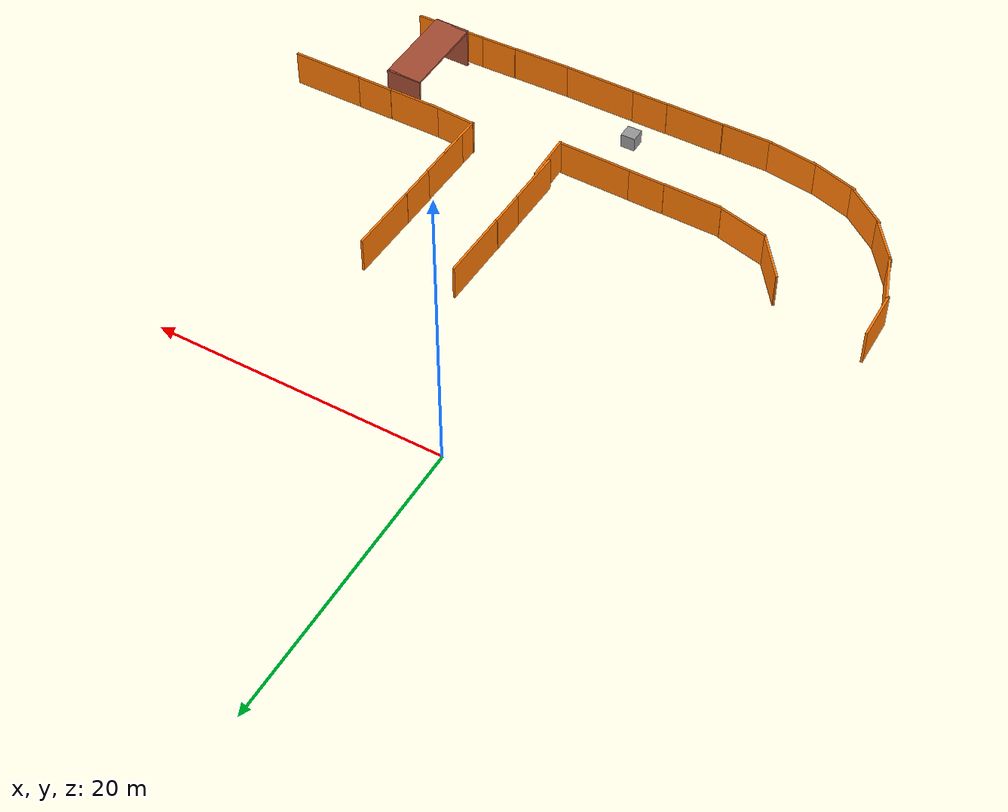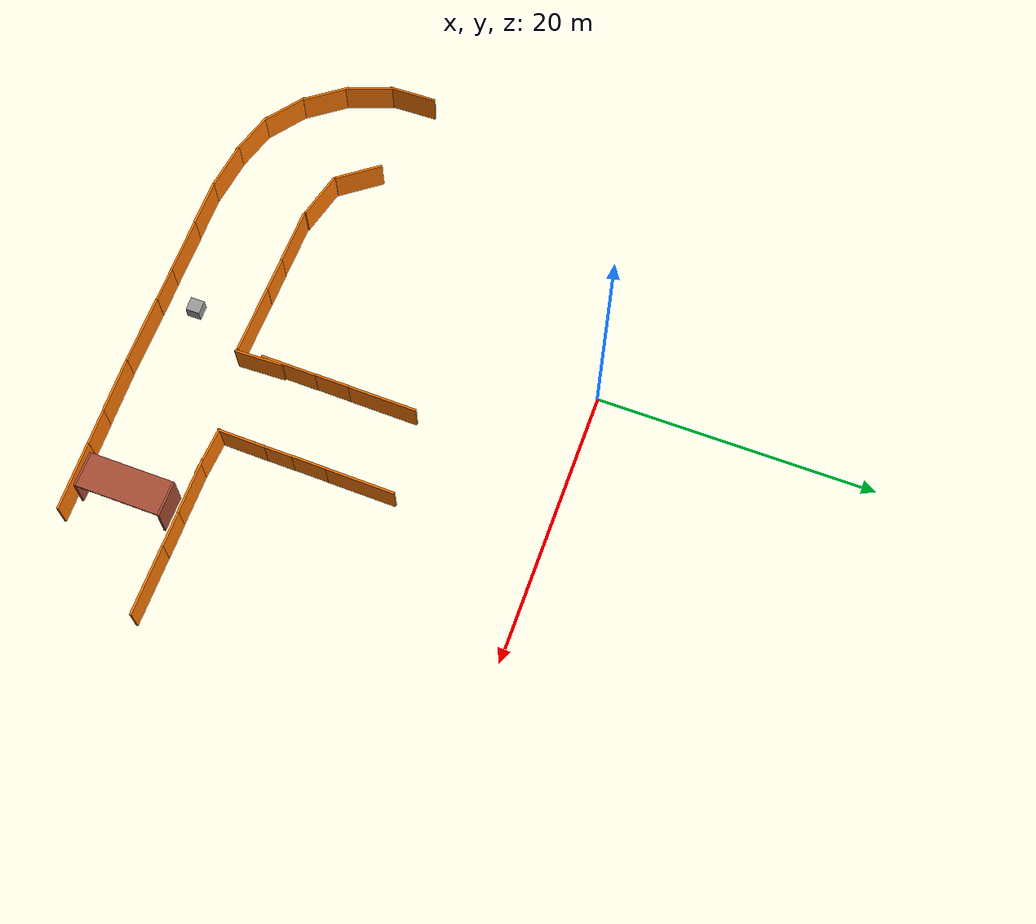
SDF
<sdf version="1.7">
 <world name="cimen_zemin_dunyasi">
  <model name="barrier2_clone_0_clone_0">
   <pose>-18.3449 -18.9963 0 0 -0 1.59331</pose>
   <link name="Wall_3">
    <collision name="Wall_3_Collision">
     <geometry><box><size>3.5 0.15 2.5</size></box></geometry>
     <pose>0 0 1.25 0 -0 0</pose>
    </collision>
    <visual name="Wall_3_Visual">
     <pose>0 0 1.25 0 -0 0</pose>
     <geometry><box><size>3.5 0.15 2.5</size></box></geometry>
     <material>
      <script><uri>file://media/materials/scripts/gazebo.material</uri><name>Gazebo/Grey</name></script>
      <ambient>0.996078 0.47451 0.0196078 1</ambient>
     </material>
     <meta><layer>0</layer></meta>
    </visual>
    <pose>-1.55327 -0.720218 0 0 -0 0</pose>
   </link>
   <static>1</static>
  </model>
  <model name="barrier2_clone_0_clone_0_clone">
   <pose>-18.1039 -22.5324 0 0 -0 1.91704</pose>
   <link name="Wall_3">
    <collision name="Wall_3_Collision">
     <geometry><box><size>3.5 0.15 2.5</size></box></geometry>
     <pose>0 0 1.25 0 -0 0</pose>
    </collision>
    <visual name="Wall_3_Visual">
     <pose>0 0 1.25 0 -0 0</pose>
     <geometry><box><size>3.5 0.15 2.5</size></box></geometry>
     <material>
      <script><uri>file://media/materials/scripts/gazebo.material</uri><name>Gazebo/Grey</name></script>
      <ambient>0.996078 0.47451 0.0196078 1</ambient>
     </material>
     <meta><layer>0</layer></meta>
    </visual>
    <pose>-1.55327 -0.720218 0 0 -0 0</pose>
   </link>
   <static>1</static>
  </model>
  <model name="barrier2_clone_0_clone_0_clone_clone">
   <pose>-16.9381 -25.7302 0 0 -0 2.21207</pose>
   <link name="Wall_3">
    <collision name="Wall_3_Collision">
     <geometry><box><size>3.5 0.15 2.5</size></box></geometry>
     <pose>0 0 1.25 0 -0 0</pose>
    </collision>
    <visual name="Wall_3_Visual">
     <pose>0 0 1.25 0 -0 0</pose>
     <geometry><box><size>3.5 0.15 2.5</size></box></geometry>
     <material>
      <script><uri>file://media/materials/scripts/gazebo.material</uri><name>Gazebo/Grey</name></script>
      <ambient>0.996078 0.47451 0.0196078 1</ambient>
     </material>
     <meta><layer>0</layer></meta>
    </visual>
    <pose>-1.55327 -0.720218 0 0 -0 0</pose>
   </link>
   <static>1</static>
  </model>
  <model name="barrier2_clone_0_clone_0_clone_clone_clone">
   <pose>-14.8373 -28.5438 0 0 -0 2.49875</pose>
   <link name="Wall_3">
    <collision name="Wall_3_Collision">
     <geometry><box><size>3.5 0.15 2.5</size></box></geometry>
     <pose>0 0 1.25 0 -0 0</pose>
    </collision>
    <visual name="Wall_3_Visual">
     <pose>0 0 1.25 0 -0 0</pose>
     <geometry><box><size>3.5 0.15 2.5</size></box></geometry>
     <material>
      <script><uri>file://media/materials/scripts/gazebo.material</uri><name>Gazebo/Grey</name></script>
      <ambient>0.996078 0.47451 0.0196078 1</ambient>
     </material>
     <meta><layer>0</layer></meta>
    </visual>
    <pose>-1.55327 -0.720218 0 0 -0 0</pose>
   </link>
   <static>1</static>
  </model>
  <model name="barrier2_clone_0_clone_0_clone_clone_clone_clone">
   <pose>-12.0783 -30.5778 0 0 -0 2.85028</pose>
   <link name="Wall_3">
    <collision name="Wall_3_Collision">
     <geometry><box><size>3.5 0.15 2.5</size></box></geometry>
     <pose>0 0 1.25 0 -0 0</pose>
    </collision>
    <visual name="Wall_3_Visual">
     <pose>0 0 1.25 0 -0 0</pose>
     <geometry><box><size>3.5 0.15 2.5</size></box></geometry>
     <material>
      <script><uri>file://media/materials/scripts/gazebo.material</uri><name>Gazebo/Grey</name></script>
      <ambient>0.996078 0.47451 0.0196078 1</ambient>
     </material>
     <meta><layer>0</layer></meta>
    </visual>
    <pose>-1.55327 -0.720218 0 0 -0 0</pose>
   </link>
   <static>1</static>
  </model>
  <model name="barrier2_clone_0_clone_0_clone_clone_clone_clone_clone">
   <pose>-8.84746 -31.4937 0 0 -0 3.00412</pose>
   <link name="Wall_3">
    <collision name="Wall_3_Collision">
     <geometry><box><size>3.5 0.15 2.5</size></box></geometry>
     <pose>0 0 1.25 0 -0 0</pose>
    </collision>
    <visual name="Wall_3_Visual">
     <pose>0 0 1.25 0 -0 0</pose>
     <geometry><box><size>3.5 0.15 2.5</size></box></geometry>
     <material>
      <script><uri>file://media/materials/scripts/gazebo.material</uri><name>Gazebo/Grey</name></script>
      <ambient>0.996078 0.47451 0.0196078 1</ambient>
     </material>
     <meta><layer>0</layer></meta>
    </visual>
    <pose>-1.55327 -0.720218 0 0 -0 0</pose>
   </link>
   <static>1</static>
  </model>
  <model name="barrier2_clone_0_clone_0_clone_clone_clone_clone_clone_clone">
   <pose>-5.48279 -31.9529 0 0 0 -3.14125</pose>
   <link name="Wall_3">
    <collision name="Wall_3_Collision">
     <geometry><box><size>3.5 0.15 2.5</size></box></geometry>
     <pose>0 0 1.25 0 -0 0</pose>
    </collision>
    <visual name="Wall_3_Visual">
     <pose>0 0 1.25 0 -0 0</pose>
     <geometry><box><size>3.5 0.15 2.5</size></box></geometry>
     <material>
      <script><uri>file://media/materials/scripts/gazebo.material</uri><name>Gazebo/Grey</name></script>
      <ambient>0.996078 0.47451 0.0196078 1</ambient>
     </material>
     <meta><layer>0</layer></meta>
    </visual>
    <pose>-1.55327 -0.720218 0 0 -0 0</pose>
   </link>
   <static>1</static>
  </model>
  <model name="barier3_clone_clone_clone_clone_0_clone_clone_clone_clone">
   <link name="Wall_5">
    <pose>-1.25417 -2.31114 0 0 -0 0</pose>
    <inertial>
     <inertia><ixx>0</ixx><ixy>0</ixy><ixz>0</ixz><iyy>0</iyy><iyz>0</iyz><izz>0</izz></inertia>
     <mass>0</mass>
    </inertial>
    <visual name="Wall_5_Visual">
     <pose>0 0 1.25 0 -0 0</pose>
     <geometry><box><size>4.04839 0.15 2.5</size></box></geometry>
     <material>
      <script><uri>file://media/materials/scripts/gazebo.material</uri><name>Gazebo/Grey</name></script>
      <ambient>0.996078 0.47451 0.0196078 1</ambient>
      <shader type="pixel"/>
     </material>
     <meta><layer>0</layer></meta>
    </visual>
    <collision name="Wall_5_Collision">
     <pose>0 0 1.25 0 -0 0</pose>
     <geometry><box><size>4.04839 0.15 2.5</size></box></geometry>
     <surface>
      <friction>
       <ode><mu>1</mu><mu2>1</mu2><fdir1>0 0 0</fdir1><slip1>0</slip1><slip2>0</slip2></ode>
       <torsional>
        <coefficient>1</coefficient>
        <patch_radius>0</patch_radius>
        <surface_radius>0</surface_radius>
        <use_patch_radius>1</use_patch_radius>
        <ode><slip>0</slip></ode>
       </torsional>
      </friction>
      <bounce><restitution_coefficient>0</restitution_coefficient><threshold>1e+06</threshold></bounce>
      <contact>
       <collide_without_contact>0</collide_without_contact>
       <collide_without_contact_bitmask>1</collide_without_contact_bitmask>
       <collide_bitmask>1</collide_bitmask>
       <ode>
        <soft_cfm>0</soft_cfm>
        <soft_erp>0.2</soft_erp>
        <kp>1e+13</kp>
        <kd>1</kd>
        <max_vel>0.01</max_vel>
        <min_depth>0</min_depth>
       </ode>
       <bullet>
        <split_impulse>1</split_impulse>
        <split_impulse_penetration_threshold>-0.01</split_impulse_penetration_threshold>
        <soft_cfm>0</soft_cfm>
        <soft_erp>0.2</soft_erp>
        <kp>1e+13</kp>
        <kd>1</kd>
       </bullet>
      </contact>
     </surface>
    </collision>
   </link>
   <link name="Wall_7">
    <pose>2 -2.29057 0 0 -0 0</pose>
    <visual name="Wall_7_Visual">
     <pose>0 0 1.25 0 -0 0</pose>
     <geometry><box><size>2.5 0.15 2.5</size></box></geometry>
     <material>
      <script><uri>file://media/materials/scripts/gazebo.material</uri><name>Gazebo/Grey</name></script>
      <ambient>0.996078 0.47451 0.0196078 1</ambient>
      <shader type="pixel"/>
     </material>
     <meta><layer>0</layer></meta>
    </visual>
    <collision name="Wall_7_Collision">
     <pose>0 0 1.25 0 -0 0</pose>
     <geometry><box><size>2.5 0.15 2.5</size></box></geometry>
     <surface>
      <friction>
       <ode><mu>1</mu><mu2>1</mu2><fdir1>0 0 0</fdir1><slip1>0</slip1><slip2>0</slip2></ode>
       <torsional>
        <coefficient>1</coefficient>
        <patch_radius>0</patch_radius>
        <surface_radius>0</surface_radius>
        <use_patch_radius>1</use_patch_radius>
        <ode><slip>0</slip></ode>
       </torsional>
      </friction>
      <bounce><restitution_coefficient>0</restitution_coefficient><threshold>1e+06</threshold></bounce>
      <contact>
       <collide_without_contact>0</collide_without_contact>
       <collide_without_contact_bitmask>1</collide_without_contact_bitmask>
       <collide_bitmask>1</collide_bitmask>
       <ode>
        <soft_cfm>0</soft_cfm>
        <soft_erp>0.2</soft_erp>
        <kp>1e+13</kp>
        <kd>1</kd>
        <max_vel>0.01</max_vel>
        <min_depth>0</min_depth>
       </ode>
       <bullet>
        <split_impulse>1</split_impulse>
        <split_impulse_penetration_threshold>-0.01</split_impulse_penetration_threshold>
        <soft_cfm>0</soft_cfm>
        <soft_erp>0.2</soft_erp>
        <kp>1e+13</kp>
        <kd>1</kd>
       </bullet>
      </contact>
     </surface>
    </collision>
   </link>
   <link name="Wall_9">
    <pose>5.71906 -2.30051 0 0 -0 0</pose>
    <inertial>
     <inertia><ixx>0</ixx><ixy>0</ixy><ixz>0</ixz><iyy>0</iyy><iyz>0</iyz><izz>0</izz></inertia>
     <mass>0</mass>
    </inertial>
    <visual name="Wall_9_Visual">
     <pose>0 0 1.25 0 -0 0</pose>
     <geometry><box><size>4.97607 0.15 2.5</size></box></geometry>
     <material>
      <script><uri>file://media/materials/scripts/gazebo.material</uri><name>Gazebo/Grey</name></script>
      <ambient>0.996078 0.47451 0.0196078 1</ambient>
      <shader type="pixel"/>
     </material>
     <meta><layer>0</layer></meta>
    </visual>
    <collision name="Wall_9_Collision">
     <pose>0 0 1.25 0 -0 0</pose>
     <geometry><box><size>4.97607 0.15 2.5</size></box></geometry>
     <surface>
      <friction>
       <ode><mu>1</mu><mu2>1</mu2><fdir1>0 0 0</fdir1><slip1>0</slip1><slip2>0</slip2></ode>
       <torsional>
        <coefficient>1</coefficient>
        <patch_radius>0</patch_radius>
        <surface_radius>0</surface_radius>
        <use_patch_radius>1</use_patch_radius>
        <ode><slip>0</slip></ode>
       </torsional>
      </friction>
      <bounce><restitution_coefficient>0</restitution_coefficient><threshold>1e+06</threshold></bounce>
      <contact>
       <collide_without_contact>0</collide_without_contact>
       <collide_without_contact_bitmask>1</collide_without_contact_bitmask>
       <collide_bitmask>1</collide_bitmask>
       <ode>
        <soft_cfm>0</soft_cfm>
        <soft_erp>0.2</soft_erp>
        <kp>1e+13</kp>
        <kd>1</kd>
        <max_vel>0.01</max_vel>
        <min_depth>0</min_depth>
       </ode>
       <bullet>
        <split_impulse>1</split_impulse>
        <split_impulse_penetration_threshold>-0.01</split_impulse_penetration_threshold>
        <soft_cfm>0</soft_cfm>
        <soft_erp>0.2</soft_erp>
        <kp>1e+13</kp>
        <kd>1</kd>
       </bullet>
      </contact>
     </surface>
    </collision>
   </link>
   <static>1</static>
   <pose>1.13149 -28.8904 0 0 -0 0</pose>
  </model>
  <model name="barier3_clone_clone_clone_clone_0_clone_clone_clone_clone_clone">
   <link name="Wall_5">
    <pose>-1.25417 -2.31114 0 0 -0 0</pose>
    <inertial>
     <inertia><ixx>0</ixx><ixy>0</ixy><ixz>0</ixz><iyy>0</iyy><iyz>0</iyz><izz>0</izz></inertia>
     <mass>0</mass>
    </inertial>
    <visual name="Wall_5_Visual">
     <pose>0 0 1.25 0 -0 0</pose>
     <geometry><box><size>4.04839 0.15 2.5</size></box></geometry>
     <material>
      <script><uri>file://media/materials/scripts/gazebo.material</uri><name>Gazebo/Grey</name></script>
      <ambient>0.996078 0.47451 0.0196078 1</ambient>
      <shader type="pixel"/>
     </material>
     <meta><layer>0</layer></meta>
    </visual>
    <collision name="Wall_5_Collision">
     <pose>0 0 1.25 0 -0 0</pose>
     <geometry><box><size>4.04839 0.15 2.5</size></box></geometry>
     <surface>
      <friction>
       <ode><mu>1</mu><mu2>1</mu2><fdir1>0 0 0</fdir1><slip1>0</slip1><slip2>0</slip2></ode>
       <torsional>
        <coefficient>1</coefficient>
        <patch_radius>0</patch_radius>
        <surface_radius>0</surface_radius>
        <use_patch_radius>1</use_patch_radius>
        <ode><slip>0</slip></ode>
       </torsional>
      </friction>
      <bounce><restitution_coefficient>0</restitution_coefficient><threshold>1e+06</threshold></bounce>
      <contact>
       <collide_without_contact>0</collide_without_contact>
       <collide_without_contact_bitmask>1</collide_without_contact_bitmask>
       <collide_bitmask>1</collide_bitmask>
       <ode>
        <soft_cfm>0</soft_cfm>
        <soft_erp>0.2</soft_erp>
        <kp>1e+13</kp>
        <kd>1</kd>
        <max_vel>0.01</max_vel>
        <min_depth>0</min_depth>
       </ode>
       <bullet>
        <split_impulse>1</split_impulse>
        <split_impulse_penetration_threshold>-0.01</split_impulse_penetration_threshold>
        <soft_cfm>0</soft_cfm>
        <soft_erp>0.2</soft_erp>
        <kp>1e+13</kp>
        <kd>1</kd>
       </bullet>
      </contact>
     </surface>
    </collision>
   </link>
   <link name="Wall_7">
    <pose>2 -2.29057 0 0 -0 0</pose>
    <visual name="Wall_7_Visual">
     <pose>0 0 1.25 0 -0 0</pose>
     <geometry><box><size>2.5 0.15 2.5</size></box></geometry>
     <material>
      <script><uri>file://media/materials/scripts/gazebo.material</uri><name>Gazebo/Grey</name></script>
      <ambient>0.996078 0.47451 0.0196078 1</ambient>
      <shader type="pixel"/>
     </material>
     <meta><layer>0</layer></meta>
    </visual>
    <collision name="Wall_7_Collision">
     <pose>0 0 1.25 0 -0 0</pose>
     <geometry><box><size>2.5 0.15 2.5</size></box></geometry>
     <surface>
      <friction>
       <ode><mu>1</mu><mu2>1</mu2><fdir1>0 0 0</fdir1><slip1>0</slip1><slip2>0</slip2></ode>
       <torsional>
        <coefficient>1</coefficient>
        <patch_radius>0</patch_radius>
        <surface_radius>0</surface_radius>
        <use_patch_radius>1</use_patch_radius>
        <ode><slip>0</slip></ode>
       </torsional>
      </friction>
      <bounce><restitution_coefficient>0</restitution_coefficient><threshold>1e+06</threshold></bounce>
      <contact>
       <collide_without_contact>0</collide_without_contact>
       <collide_without_contact_bitmask>1</collide_without_contact_bitmask>
       <collide_bitmask>1</collide_bitmask>
       <ode>
        <soft_cfm>0</soft_cfm>
        <soft_erp>0.2</soft_erp>
        <kp>1e+13</kp>
        <kd>1</kd>
        <max_vel>0.01</max_vel>
        <min_depth>0</min_depth>
       </ode>
       <bullet>
        <split_impulse>1</split_impulse>
        <split_impulse_penetration_threshold>-0.01</split_impulse_penetration_threshold>
        <soft_cfm>0</soft_cfm>
        <soft_erp>0.2</soft_erp>
        <kp>1e+13</kp>
        <kd>1</kd>
       </bullet>
      </contact>
     </surface>
    </collision>
   </link>
   <link name="Wall_9">
    <pose>5.71906 -2.30051 0 0 -0 0</pose>
    <inertial>
     <inertia><ixx>0</ixx><ixy>0</ixy><ixz>0</ixz><iyy>0</iyy><iyz>0</iyz><izz>0</izz></inertia>
     <mass>0</mass>
    </inertial>
    <visual name="Wall_9_Visual">
     <pose>0 0 1.25 0 -0 0</pose>
     <geometry><box><size>4.97607 0.15 2.5</size></box></geometry>
     <material>
      <script><uri>file://media/materials/scripts/gazebo.material</uri><name>Gazebo/Grey</name></script>
      <ambient>0.996078 0.47451 0.0196078 1</ambient>
      <shader type="pixel"/>
     </material>
     <meta><layer>0</layer></meta>
    </visual>
    <collision name="Wall_9_Collision">
     <pose>0 0 1.25 0 -0 0</pose>
     <geometry><box><size>4.97607 0.15 2.5</size></box></geometry>
     <surface>
      <friction>
       <ode><mu>1</mu><mu2>1</mu2><fdir1>0 0 0</fdir1><slip1>0</slip1><slip2>0</slip2></ode>
       <torsional>
        <coefficient>1</coefficient>
        <patch_radius>0</patch_radius>
        <surface_radius>0</surface_radius>
        <use_patch_radius>1</use_patch_radius>
        <ode><slip>0</slip></ode>
       </torsional>
      </friction>
      <bounce><restitution_coefficient>0</restitution_coefficient><threshold>1e+06</threshold></bounce>
      <contact>
       <collide_without_contact>0</collide_without_contact>
       <collide_without_contact_bitmask>1</collide_without_contact_bitmask>
       <collide_bitmask>1</collide_bitmask>
       <ode>
        <soft_cfm>0</soft_cfm>
        <soft_erp>0.2</soft_erp>
        <kp>1e+13</kp>
        <kd>1</kd>
        <max_vel>0.01</max_vel>
        <min_depth>0</min_depth>
       </ode>
       <bullet>
        <split_impulse>1</split_impulse>
        <split_impulse_penetration_threshold>-0.01</split_impulse_penetration_threshold>
        <soft_cfm>0</soft_cfm>
        <soft_erp>0.2</soft_erp>
        <kp>1e+13</kp>
        <kd>1</kd>
       </bullet>
      </contact>
     </surface>
    </collision>
   </link>
   <static>1</static>
   <pose>12.539 -28.8007 0 0 -0 0.025087</pose>
  </model>
  <model name="barier3_clone_clone_clone_clone_0_clone_clone_clone_clone_0">
   <link name="Wall_5">
    <pose>-1.25417 -2.31114 0 0 -0 0</pose>
    <inertial>
     <inertia><ixx>0</ixx><ixy>0</ixy><ixz>0</ixz><iyy>0</iyy><iyz>0</iyz><izz>0</izz></inertia>
     <mass>0</mass>
    </inertial>
    <visual name="Wall_5_Visual">
     <pose>0 0 1.25 0 -0 0</pose>
     <geometry><box><size>4.04839 0.15 2.5</size></box></geometry>
     <material>
      <script><uri>file://media/materials/scripts/gazebo.material</uri><name>Gazebo/Grey</name></script>
      <ambient>0.996078 0.47451 0.0196078 1</ambient>
      <shader type="pixel"/>
     </material>
     <meta><layer>0</layer></meta>
    </visual>
    <collision name="Wall_5_Collision">
     <pose>0 0 1.25 0 -0 0</pose>
     <geometry><box><size>4.04839 0.15 2.5</size></box></geometry>
     <surface>
      <friction>
       <ode><mu>1</mu><mu2>1</mu2><fdir1>0 0 0</fdir1><slip1>0</slip1><slip2>0</slip2></ode>
       <torsional>
        <coefficient>1</coefficient>
        <patch_radius>0</patch_radius>
        <surface_radius>0</surface_radius>
        <use_patch_radius>1</use_patch_radius>
        <ode><slip>0</slip></ode>
       </torsional>
      </friction>
      <bounce><restitution_coefficient>0</restitution_coefficient><threshold>1e+06</threshold></bounce>
      <contact>
       <collide_without_contact>0</collide_without_contact>
       <collide_without_contact_bitmask>1</collide_without_contact_bitmask>
       <collide_bitmask>1</collide_bitmask>
       <ode>
        <soft_cfm>0</soft_cfm>
        <soft_erp>0.2</soft_erp>
        <kp>1e+13</kp>
        <kd>1</kd>
        <max_vel>0.01</max_vel>
        <min_depth>0</min_depth>
       </ode>
       <bullet>
        <split_impulse>1</split_impulse>
        <split_impulse_penetration_threshold>-0.01</split_impulse_penetration_threshold>
        <soft_cfm>0</soft_cfm>
        <soft_erp>0.2</soft_erp>
        <kp>1e+13</kp>
        <kd>1</kd>
       </bullet>
      </contact>
     </surface>
    </collision>
   </link>
   <link name="Wall_7">
    <pose>2 -2.29057 0 0 -0 0</pose>
    <visual name="Wall_7_Visual">
     <pose>0 0 1.25 0 -0 0</pose>
     <geometry><box><size>2.5 0.15 2.5</size></box></geometry>
     <material>
      <script><uri>file://media/materials/scripts/gazebo.material</uri><name>Gazebo/Grey</name></script>
      <ambient>0.996078 0.47451 0.0196078 1</ambient>
      <shader type="pixel"/>
     </material>
     <meta><layer>0</layer></meta>
    </visual>
    <collision name="Wall_7_Collision">
     <pose>0 0 1.25 0 -0 0</pose>
     <geometry><box><size>2.5 0.15 2.5</size></box></geometry>
     <surface>
      <friction>
       <ode><mu>1</mu><mu2>1</mu2><fdir1>0 0 0</fdir1><slip1>0</slip1><slip2>0</slip2></ode>
       <torsional>
        <coefficient>1</coefficient>
        <patch_radius>0</patch_radius>
        <surface_radius>0</surface_radius>
        <use_patch_radius>1</use_patch_radius>
        <ode><slip>0</slip></ode>
       </torsional>
      </friction>
      <bounce><restitution_coefficient>0</restitution_coefficient><threshold>1e+06</threshold></bounce>
      <contact>
       <collide_without_contact>0</collide_without_contact>
       <collide_without_contact_bitmask>1</collide_without_contact_bitmask>
       <collide_bitmask>1</collide_bitmask>
       <ode>
        <soft_cfm>0</soft_cfm>
        <soft_erp>0.2</soft_erp>
        <kp>1e+13</kp>
        <kd>1</kd>
        <max_vel>0.01</max_vel>
        <min_depth>0</min_depth>
       </ode>
       <bullet>
        <split_impulse>1</split_impulse>
        <split_impulse_penetration_threshold>-0.01</split_impulse_penetration_threshold>
        <soft_cfm>0</soft_cfm>
        <soft_erp>0.2</soft_erp>
        <kp>1e+13</kp>
        <kd>1</kd>
       </bullet>
      </contact>
     </surface>
    </collision>
   </link>
   <link name="Wall_9">
    <pose>5.71906 -2.30051 0 0 -0 0</pose>
    <inertial>
     <inertia><ixx>0</ixx><ixy>0</ixy><ixz>0</ixz><iyy>0</iyy><iyz>0</iyz><izz>0</izz></inertia>
     <mass>0</mass>
    </inertial>
    <visual name="Wall_9_Visual">
     <pose>0 0 1.25 0 -0 0</pose>
     <geometry><box><size>4.97607 0.15 2.5</size></box></geometry>
     <material>
      <script><uri>file://media/materials/scripts/gazebo.material</uri><name>Gazebo/Grey</name></script>
      <ambient>0.996078 0.47451 0.0196078 1</ambient>
      <shader type="pixel"/>
     </material>
     <meta><layer>0</layer></meta>
    </visual>
    <collision name="Wall_9_Collision">
     <pose>0 0 1.25 0 -0 0</pose>
     <geometry><box><size>4.97607 0.15 2.5</size></box></geometry>
     <surface>
      <friction>
       <ode><mu>1</mu><mu2>1</mu2><fdir1>0 0 0</fdir1><slip1>0</slip1><slip2>0</slip2></ode>
       <torsional>
        <coefficient>1</coefficient>
        <patch_radius>0</patch_radius>
        <surface_radius>0</surface_radius>
        <use_patch_radius>1</use_patch_radius>
        <ode><slip>0</slip></ode>
       </torsional>
      </friction>
      <bounce><restitution_coefficient>0</restitution_coefficient><threshold>1e+06</threshold></bounce>
      <contact>
       <collide_without_contact>0</collide_without_contact>
       <collide_without_contact_bitmask>1</collide_without_contact_bitmask>
       <collide_bitmask>1</collide_bitmask>
       <ode>
        <soft_cfm>0</soft_cfm>
        <soft_erp>0.2</soft_erp>
        <kp>1e+13</kp>
        <kd>1</kd>
        <max_vel>0.01</max_vel>
        <min_depth>0</min_depth>
       </ode>
       <bullet>
        <split_impulse>1</split_impulse>
        <split_impulse_penetration_threshold>-0.01</split_impulse_penetration_threshold>
        <soft_cfm>0</soft_cfm>
        <soft_erp>0.2</soft_erp>
        <kp>1e+13</kp>
        <kd>1</kd>
       </bullet>
      </contact>
     </surface>
    </collision>
   </link>
   <static>1</static>
   <pose>9.70371 -18.4802 0 0 -0 1.5555</pose>
  </model>
  <model name="barier3_clone_clone_clone_clone_0_clone_clone_clone_clone_0_clone_1">
   <link name="Wall_5">
    <pose>-1.25417 -2.31114 0 0 -0 0</pose>
    <inertial>
     <inertia><ixx>0</ixx><ixy>0</ixy><ixz>0</ixz><iyy>0</iyy><iyz>0</iyz><izz>0</izz></inertia>
     <mass>0</mass>
    </inertial>
    <visual name="Wall_5_Visual">
     <pose>0 0 1.25 0 -0 0</pose>
     <geometry><box><size>4.04839 0.15 2.5</size></box></geometry>
     <material>
      <script><uri>file://media/materials/scripts/gazebo.material</uri><name>Gazebo/Grey</name></script>
      <ambient>0.996078 0.47451 0.0196078 1</ambient>
      <shader type="pixel"/>
     </material>
     <meta><layer>0</layer></meta>
    </visual>
    <collision name="Wall_5_Collision">
     <pose>0 0 1.25 0 -0 0</pose>
     <geometry><box><size>4.04839 0.15 2.5</size></box></geometry>
     <surface>
      <friction>
       <ode><mu>1</mu><mu2>1</mu2><fdir1>0 0 0</fdir1><slip1>0</slip1><slip2>0</slip2></ode>
       <torsional>
        <coefficient>1</coefficient>
        <patch_radius>0</patch_radius>
        <surface_radius>0</surface_radius>
        <use_patch_radius>1</use_patch_radius>
        <ode><slip>0</slip></ode>
       </torsional>
      </friction>
      <bounce><restitution_coefficient>0</restitution_coefficient><threshold>1e+06</threshold></bounce>
      <contact>
       <collide_without_contact>0</collide_without_contact>
       <collide_without_contact_bitmask>1</collide_without_contact_bitmask>
       <collide_bitmask>1</collide_bitmask>
       <ode>
        <soft_cfm>0</soft_cfm>
        <soft_erp>0.2</soft_erp>
        <kp>1e+13</kp>
        <kd>1</kd>
        <max_vel>0.01</max_vel>
        <min_depth>0</min_depth>
       </ode>
       <bullet>
        <split_impulse>1</split_impulse>
        <split_impulse_penetration_threshold>-0.01</split_impulse_penetration_threshold>
        <soft_cfm>0</soft_cfm>
        <soft_erp>0.2</soft_erp>
        <kp>1e+13</kp>
        <kd>1</kd>
       </bullet>
      </contact>
     </surface>
    </collision>
   </link>
   <link name="Wall_7">
    <pose>2 -2.29057 0 0 -0 0</pose>
    <visual name="Wall_7_Visual">
     <pose>0 0 1.25 0 -0 0</pose>
     <geometry><box><size>2.5 0.15 2.5</size></box></geometry>
     <material>
      <script><uri>file://media/materials/scripts/gazebo.material</uri><name>Gazebo/Grey</name></script>
      <ambient>0.996078 0.47451 0.0196078 1</ambient>
      <shader type="pixel"/>
     </material>
     <meta><layer>0</layer></meta>
    </visual>
    <collision name="Wall_7_Collision">
     <pose>0 0 1.25 0 -0 0</pose>
     <geometry><box><size>2.5 0.15 2.5</size></box></geometry>
     <surface>
      <friction>
       <ode><mu>1</mu><mu2>1</mu2><fdir1>0 0 0</fdir1><slip1>0</slip1><slip2>0</slip2></ode>
       <torsional>
        <coefficient>1</coefficient>
        <patch_radius>0</patch_radius>
        <surface_radius>0</surface_radius>
        <use_patch_radius>1</use_patch_radius>
        <ode><slip>0</slip></ode>
       </torsional>
      </friction>
      <bounce><restitution_coefficient>0</restitution_coefficient><threshold>1e+06</threshold></bounce>
      <contact>
       <collide_without_contact>0</collide_without_contact>
       <collide_without_contact_bitmask>1</collide_without_contact_bitmask>
       <collide_bitmask>1</collide_bitmask>
       <ode>
        <soft_cfm>0</soft_cfm>
        <soft_erp>0.2</soft_erp>
        <kp>1e+13</kp>
        <kd>1</kd>
        <max_vel>0.01</max_vel>
        <min_depth>0</min_depth>
       </ode>
       <bullet>
        <split_impulse>1</split_impulse>
        <split_impulse_penetration_threshold>-0.01</split_impulse_penetration_threshold>
        <soft_cfm>0</soft_cfm>
        <soft_erp>0.2</soft_erp>
        <kp>1e+13</kp>
        <kd>1</kd>
       </bullet>
      </contact>
     </surface>
    </collision>
   </link>
   <link name="Wall_9">
    <pose>5.71906 -2.30051 0 0 -0 0</pose>
    <inertial>
     <inertia><ixx>0</ixx><ixy>0</ixy><ixz>0</ixz><iyy>0</iyy><iyz>0</iyz><izz>0</izz></inertia>
     <mass>0</mass>
    </inertial>
    <visual name="Wall_9_Visual">
     <pose>0 0 1.25 0 -0 0</pose>
     <geometry><box><size>4.97607 0.15 2.5</size></box></geometry>
     <material>
      <script><uri>file://media/materials/scripts/gazebo.material</uri><name>Gazebo/Grey</name></script>
      <ambient>0.996078 0.47451 0.0196078 1</ambient>
      <shader type="pixel"/>
     </material>
     <meta><layer>0</layer></meta>
    </visual>
    <collision name="Wall_9_Collision">
     <pose>0 0 1.25 0 -0 0</pose>
     <geometry><box><size>4.97607 0.15 2.5</size></box></geometry>
     <surface>
      <friction>
       <ode><mu>1</mu><mu2>1</mu2><fdir1>0 0 0</fdir1><slip1>0</slip1><slip2>0</slip2></ode>
       <torsional>
        <coefficient>1</coefficient>
        <patch_radius>0</patch_radius>
        <surface_radius>0</surface_radius>
        <use_patch_radius>1</use_patch_radius>
        <ode><slip>0</slip></ode>
       </torsional>
      </friction>
      <bounce><restitution_coefficient>0</restitution_coefficient><threshold>1e+06</threshold></bounce>
      <contact>
       <collide_without_contact>0</collide_without_contact>
       <collide_without_contact_bitmask>1</collide_without_contact_bitmask>
       <collide_bitmask>1</collide_bitmask>
       <ode>
        <soft_cfm>0</soft_cfm>
        <soft_erp>0.2</soft_erp>
        <kp>1e+13</kp>
        <kd>1</kd>
        <max_vel>0.01</max_vel>
        <min_depth>0</min_depth>
       </ode>
       <bullet>
        <split_impulse>1</split_impulse>
        <split_impulse_penetration_threshold>-0.01</split_impulse_penetration_threshold>
        <soft_cfm>0</soft_cfm>
        <soft_erp>0.2</soft_erp>
        <kp>1e+13</kp>
        <kd>1</kd>
       </bullet>
      </contact>
     </surface>
    </collision>
   </link>
   <static>1</static>
   <pose>3.61319 -19.2952 0 0 -0 1.5555</pose>
  </model>
  <model name="barier3_clone_clone_clone_clone_0_clone_clone_clone_clone_2">
   <link name="Wall_5">
    <pose>-1.25417 -2.31114 0 0 -0 0</pose>
    <inertial>
     <inertia><ixx>0</ixx><ixy>0</ixy><ixz>0</ixz><iyy>0</iyy><iyz>0</iyz><izz>0</izz></inertia>
     <mass>0</mass>
    </inertial>
    <visual name="Wall_5_Visual">
     <pose>0 0 1.25 0 -0 0</pose>
     <geometry><box><size>4.04839 0.15 2.5</size></box></geometry>
     <material>
      <script><uri>file://media/materials/scripts/gazebo.material</uri><name>Gazebo/Grey</name></script>
      <ambient>0.996078 0.47451 0.0196078 1</ambient>
      <shader type="pixel"/>
     </material>
     <meta><layer>0</layer></meta>
    </visual>
    <collision name="Wall_5_Collision">
     <pose>0 0 1.25 0 -0 0</pose>
     <geometry><box><size>4.04839 0.15 2.5</size></box></geometry>
     <surface>
      <friction>
       <ode><mu>1</mu><mu2>1</mu2><fdir1>0 0 0</fdir1><slip1>0</slip1><slip2>0</slip2></ode>
       <torsional>
        <coefficient>1</coefficient>
        <patch_radius>0</patch_radius>
        <surface_radius>0</surface_radius>
        <use_patch_radius>1</use_patch_radius>
        <ode><slip>0</slip></ode>
       </torsional>
      </friction>
      <bounce><restitution_coefficient>0</restitution_coefficient><threshold>1e+06</threshold></bounce>
      <contact>
       <collide_without_contact>0</collide_without_contact>
       <collide_without_contact_bitmask>1</collide_without_contact_bitmask>
       <collide_bitmask>1</collide_bitmask>
       <ode>
        <soft_cfm>0</soft_cfm>
        <soft_erp>0.2</soft_erp>
        <kp>1e+13</kp>
        <kd>1</kd>
        <max_vel>0.01</max_vel>
        <min_depth>0</min_depth>
       </ode>
       <bullet>
        <split_impulse>1</split_impulse>
        <split_impulse_penetration_threshold>-0.01</split_impulse_penetration_threshold>
        <soft_cfm>0</soft_cfm>
        <soft_erp>0.2</soft_erp>
        <kp>1e+13</kp>
        <kd>1</kd>
       </bullet>
      </contact>
     </surface>
    </collision>
   </link>
   <link name="Wall_7">
    <pose>2 -2.29057 0 0 -0 0</pose>
    <visual name="Wall_7_Visual">
     <pose>0 0 1.25 0 -0 0</pose>
     <geometry><box><size>2.5 0.15 2.5</size></box></geometry>
     <material>
      <script><uri>file://media/materials/scripts/gazebo.material</uri><name>Gazebo/Grey</name></script>
      <ambient>0.996078 0.47451 0.0196078 1</ambient>
      <shader type="pixel"/>
     </material>
     <meta><layer>0</layer></meta>
    </visual>
    <collision name="Wall_7_Collision">
     <pose>0 0 1.25 0 -0 0</pose>
     <geometry><box><size>2.5 0.15 2.5</size></box></geometry>
     <surface>
      <friction>
       <ode><mu>1</mu><mu2>1</mu2><fdir1>0 0 0</fdir1><slip1>0</slip1><slip2>0</slip2></ode>
       <torsional>
        <coefficient>1</coefficient>
        <patch_radius>0</patch_radius>
        <surface_radius>0</surface_radius>
        <use_patch_radius>1</use_patch_radius>
        <ode><slip>0</slip></ode>
       </torsional>
      </friction>
      <bounce><restitution_coefficient>0</restitution_coefficient><threshold>1e+06</threshold></bounce>
      <contact>
       <collide_without_contact>0</collide_without_contact>
       <collide_without_contact_bitmask>1</collide_without_contact_bitmask>
       <collide_bitmask>1</collide_bitmask>
       <ode>
        <soft_cfm>0</soft_cfm>
        <soft_erp>0.2</soft_erp>
        <kp>1e+13</kp>
        <kd>1</kd>
        <max_vel>0.01</max_vel>
        <min_depth>0</min_depth>
       </ode>
       <bullet>
        <split_impulse>1</split_impulse>
        <split_impulse_penetration_threshold>-0.01</split_impulse_penetration_threshold>
        <soft_cfm>0</soft_cfm>
        <soft_erp>0.2</soft_erp>
        <kp>1e+13</kp>
        <kd>1</kd>
       </bullet>
      </contact>
     </surface>
    </collision>
   </link>
   <link name="Wall_9">
    <pose>5.71906 -2.30051 0 0 -0 0</pose>
    <inertial>
     <inertia><ixx>0</ixx><ixy>0</ixy><ixz>0</ixz><iyy>0</iyy><iyz>0</iyz><izz>0</izz></inertia>
     <mass>0</mass>
    </inertial>
    <visual name="Wall_9_Visual">
     <pose>0 0 1.25 0 -0 0</pose>
     <geometry><box><size>4.97607 0.15 2.5</size></box></geometry>
     <material>
      <script><uri>file://media/materials/scripts/gazebo.material</uri><name>Gazebo/Grey</name></script>
      <ambient>0.996078 0.47451 0.0196078 1</ambient>
      <shader type="pixel"/>
     </material>
     <meta><layer>0</layer></meta>
    </visual>
    <collision name="Wall_9_Collision">
     <pose>0 0 1.25 0 -0 0</pose>
     <geometry><box><size>4.97607 0.15 2.5</size></box></geometry>
     <surface>
      <friction>
       <ode><mu>1</mu><mu2>1</mu2><fdir1>0 0 0</fdir1><slip1>0</slip1><slip2>0</slip2></ode>
       <torsional>
        <coefficient>1</coefficient>
        <patch_radius>0</patch_radius>
        <surface_radius>0</surface_radius>
        <use_patch_radius>1</use_patch_radius>
        <ode><slip>0</slip></ode>
       </torsional>
      </friction>
      <bounce><restitution_coefficient>0</restitution_coefficient><threshold>1e+06</threshold></bounce>
      <contact>
       <collide_without_contact>0</collide_without_contact>
       <collide_without_contact_bitmask>1</collide_without_contact_bitmask>
       <collide_bitmask>1</collide_bitmask>
       <ode>
        <soft_cfm>0</soft_cfm>
        <soft_erp>0.2</soft_erp>
        <kp>1e+13</kp>
        <kd>1</kd>
        <max_vel>0.01</max_vel>
        <min_depth>0</min_depth>
       </ode>
       <bullet>
        <split_impulse>1</split_impulse>
        <split_impulse_penetration_threshold>-0.01</split_impulse_penetration_threshold>
        <soft_cfm>0</soft_cfm>
        <soft_erp>0.2</soft_erp>
        <kp>1e+13</kp>
        <kd>1</kd>
       </bullet>
      </contact>
     </surface>
    </collision>
   </link>
   <static>1</static>
   <pose>17.55 -20.9873 0 0 -0 0</pose>
  </model>
  <model name="barrier2_clone_clone_0_clone_0_clone_0_clone_clone_clone">
   <pose>11.9749 -23.8417 0 0 -0 3.0748</pose>
   <link name="Wall_3">
    <collision name="Wall_3_Collision">
     <geometry><box><size>3.5 0.15 2.5</size></box></geometry>
     <pose>0 0 1.25 0 -0 0</pose>
    </collision>
    <visual name="Wall_3_Visual">
     <pose>0 0 1.25 0 -0 0</pose>
     <geometry><box><size>3.5 0.15 2.5</size></box></geometry>
     <material>
      <script><uri>file://media/materials/scripts/gazebo.material</uri><name>Gazebo/Grey</name></script>
      <ambient>0.996078 0.47451 0.0196078 1</ambient>
     </material>
     <meta><layer>0</layer></meta>
    </visual>
    <pose>-1.55327 -0.720218 0 0 -0 0</pose>
   </link>
   <static>1</static>
  </model>
  <model name="barrier2_clone_clone_0_clone_0_clone_0_clone_clone_clone_clone">
   <pose>12.6672 -23.0543 0 0 0 -1.58935</pose>
   <link name="Wall_3">
    <collision name="Wall_3_Collision">
     <geometry><box><size>3.5 0.15 2.5</size></box></geometry>
     <pose>0 0 1.25 0 -0 0</pose>
    </collision>
    <visual name="Wall_3_Visual">
     <pose>0 0 1.25 0 -0 0</pose>
     <geometry><box><size>3.5 0.15 2.5</size></box></geometry>
     <material>
      <script><uri>file://media/materials/scripts/gazebo.material</uri><name>Gazebo/Grey</name></script>
      <ambient>0.996078 0.47451 0.0196078 1</ambient>
     </material>
     <meta><layer>0</layer></meta>
    </visual>
    <pose>-1.55327 -0.720218 0 0 -0 0</pose>
   </link>
   <static>1</static>
  </model>
  <model name="barrier2_clone_0_clone_0_clone_0_clone">
   <pose>-11.556 -20.9702 0 0 -0 2.21497</pose>
   <link name="Wall_3">
    <collision name="Wall_3_Collision">
     <geometry><box><size>3.5 0.15 2.5</size></box></geometry>
     <pose>0 0 1.25 0 -0 0</pose>
    </collision>
    <visual name="Wall_3_Visual">
     <pose>0 0 1.25 0 -0 0</pose>
     <geometry><box><size>3.5 0.15 2.5</size></box></geometry>
     <material>
      <script><uri>file://media/materials/scripts/gazebo.material</uri><name>Gazebo/Grey</name></script>
      <ambient>0.996078 0.47451 0.0196078 1</ambient>
     </material>
     <meta><layer>0</layer></meta>
    </visual>
    <pose>-1.55327 -0.720218 0 0 -0 0</pose>
   </link>
   <static>1</static>
  </model>
  <model name="barrier2_clone_0_clone_0_clone_0_clone_clone">
   <pose>-8.95625 -23.9915 0 0 -0 2.89476</pose>
   <link name="Wall_3">
    <collision name="Wall_3_Collision">
     <geometry><box><size>3.5 0.15 2.5</size></box></geometry>
     <pose>0 0 1.25 0 -0 0</pose>
    </collision>
    <visual name="Wall_3_Visual">
     <pose>0 0 1.25 0 -0 0</pose>
     <geometry><box><size>3.5 0.15 2.5</size></box></geometry>
     <material>
      <script><uri>file://media/materials/scripts/gazebo.material</uri><name>Gazebo/Grey</name></script>
      <ambient>0.996078 0.47451 0.0196078 1</ambient>
     </material>
     <meta><layer>0</layer></meta>
    </visual>
    <pose>-1.55327 -0.720218 0 0 -0 0</pose>
   </link>
   <static>1</static>
  </model>
  <model name="barier3_clone_clone_clone_clone_0_clone_clone_clone_clone_0_clone_1_clone_clone">
   <link name="Wall_5">
    <pose>-1.25417 -2.31114 0 0 -0 0</pose>
    <inertial>
     <inertia><ixx>0</ixx><ixy>0</ixy><ixz>0</ixz><iyy>0</iyy><iyz>0</iyz><izz>0</izz></inertia>
     <mass>0</mass>
    </inertial>
    <visual name="Wall_5_Visual">
     <pose>0 0 1.25 0 -0 0</pose>
     <geometry><box><size>4.04839 0.15 2.5</size></box></geometry>
     <material>
      <script><uri>file://media/materials/scripts/gazebo.material</uri><name>Gazebo/Grey</name></script>
      <ambient>0.996078 0.47451 0.0196078 1</ambient>
      <shader type="pixel"/>
     </material>
     <meta><layer>0</layer></meta>
    </visual>
    <collision name="Wall_5_Collision">
     <pose>0 0 1.25 0 -0 0</pose>
     <geometry><box><size>4.04839 0.15 2.5</size></box></geometry>
     <surface>
      <friction>
       <ode><mu>1</mu><mu2>1</mu2><fdir1>0 0 0</fdir1><slip1>0</slip1><slip2>0</slip2></ode>
       <torsional>
        <coefficient>1</coefficient>
        <patch_radius>0</patch_radius>
        <surface_radius>0</surface_radius>
        <use_patch_radius>1</use_patch_radius>
        <ode><slip>0</slip></ode>
       </torsional>
      </friction>
      <bounce><restitution_coefficient>0</restitution_coefficient><threshold>1e+06</threshold></bounce>
      <contact>
       <collide_without_contact>0</collide_without_contact>
       <collide_without_contact_bitmask>1</collide_without_contact_bitmask>
       <collide_bitmask>1</collide_bitmask>
       <ode>
        <soft_cfm>0</soft_cfm>
        <soft_erp>0.2</soft_erp>
        <kp>1e+13</kp>
        <kd>1</kd>
        <max_vel>0.01</max_vel>
        <min_depth>0</min_depth>
       </ode>
       <bullet>
        <split_impulse>1</split_impulse>
        <split_impulse_penetration_threshold>-0.01</split_impulse_penetration_threshold>
        <soft_cfm>0</soft_cfm>
        <soft_erp>0.2</soft_erp>
        <kp>1e+13</kp>
        <kd>1</kd>
       </bullet>
      </contact>
     </surface>
    </collision>
   </link>
   <link name="Wall_7">
    <pose>2 -2.29057 0 0 -0 0</pose>
    <visual name="Wall_7_Visual">
     <pose>0 0 1.25 0 -0 0</pose>
     <geometry><box><size>2.5 0.15 2.5</size></box></geometry>
     <material>
      <script><uri>file://media/materials/scripts/gazebo.material</uri><name>Gazebo/Grey</name></script>
      <ambient>0.996078 0.47451 0.0196078 1</ambient>
      <shader type="pixel"/>
     </material>
     <meta><layer>0</layer></meta>
    </visual>
    <collision name="Wall_7_Collision">
     <pose>0 0 1.25 0 -0 0</pose>
     <geometry><box><size>2.5 0.15 2.5</size></box></geometry>
     <surface>
      <friction>
       <ode><mu>1</mu><mu2>1</mu2><fdir1>0 0 0</fdir1><slip1>0</slip1><slip2>0</slip2></ode>
       <torsional>
        <coefficient>1</coefficient>
        <patch_radius>0</patch_radius>
        <surface_radius>0</surface_radius>
        <use_patch_radius>1</use_patch_radius>
        <ode><slip>0</slip></ode>
       </torsional>
      </friction>
      <bounce><restitution_coefficient>0</restitution_coefficient><threshold>1e+06</threshold></bounce>
      <contact>
       <collide_without_contact>0</collide_without_contact>
       <collide_without_contact_bitmask>1</collide_without_contact_bitmask>
       <collide_bitmask>1</collide_bitmask>
       <ode>
        <soft_cfm>0</soft_cfm>
        <soft_erp>0.2</soft_erp>
        <kp>1e+13</kp>
        <kd>1</kd>
        <max_vel>0.01</max_vel>
        <min_depth>0</min_depth>
       </ode>
       <bullet>
        <split_impulse>1</split_impulse>
        <split_impulse_penetration_threshold>-0.01</split_impulse_penetration_threshold>
        <soft_cfm>0</soft_cfm>
        <soft_erp>0.2</soft_erp>
        <kp>1e+13</kp>
        <kd>1</kd>
       </bullet>
      </contact>
     </surface>
    </collision>
   </link>
   <link name="Wall_9">
    <pose>5.71906 -2.30051 0 0 -0 0</pose>
    <inertial>
     <inertia><ixx>0</ixx><ixy>0</ixy><ixz>0</ixz><iyy>0</iyy><iyz>0</iyz><izz>0</izz></inertia>
     <mass>0</mass>
    </inertial>
    <visual name="Wall_9_Visual">
     <pose>0 0 1.25 0 -0 0</pose>
     <geometry><box><size>4.97607 0.15 2.5</size></box></geometry>
     <material>
      <script><uri>file://media/materials/scripts/gazebo.material</uri><name>Gazebo/Grey</name></script>
      <ambient>0.996078 0.47451 0.0196078 1</ambient>
      <shader type="pixel"/>
     </material>
     <meta><layer>0</layer></meta>
    </visual>
    <collision name="Wall_9_Collision">
     <pose>0 0 1.25 0 -0 0</pose>
     <geometry><box><size>4.97607 0.15 2.5</size></box></geometry>
     <surface>
      <friction>
       <ode><mu>1</mu><mu2>1</mu2><fdir1>0 0 0</fdir1><slip1>0</slip1><slip2>0</slip2></ode>
       <torsional>
        <coefficient>1</coefficient>
        <patch_radius>0</patch_radius>
        <surface_radius>0</surface_radius>
        <use_patch_radius>1</use_patch_radius>
        <ode><slip>0</slip></ode>
       </torsional>
      </friction>
      <bounce><restitution_coefficient>0</restitution_coefficient><threshold>1e+06</threshold></bounce>
      <contact>
       <collide_without_contact>0</collide_without_contact>
       <collide_without_contact_bitmask>1</collide_without_contact_bitmask>
       <collide_bitmask>1</collide_bitmask>
       <ode>
        <soft_cfm>0</soft_cfm>
        <soft_erp>0.2</soft_erp>
        <kp>1e+13</kp>
        <kd>1</kd>
        <max_vel>0.01</max_vel>
        <min_depth>0</min_depth>
       </ode>
       <bullet>
        <split_impulse>1</split_impulse>
        <split_impulse_penetration_threshold>-0.01</split_impulse_penetration_threshold>
        <soft_cfm>0</soft_cfm>
        <soft_erp>0.2</soft_erp>
        <kp>1e+13</kp>
        <kd>1</kd>
       </bullet>
      </contact>
     </surface>
    </collision>
   </link>
   <static>1</static>
   <pose>-2.20684 -21.9097 0 0 0 -0.017461</pose>
  </model>
  <model name="barrier2_clone_clone_0_clone_0_clone_1_clone">
   <pose>5.29339 -21.2074 0 0 -0 1.60287</pose>
   <link name="Wall_3">
    <collision name="Wall_3_Collision">
     <geometry><box><size>3.5 0.15 2.5</size></box></geometry>
     <pose>0 0 1.25 0 -0 0</pose>
    </collision>
    <visual name="Wall_3_Visual">
     <pose>0 0 1.25 0 -0 0</pose>
     <geometry><box><size>3.5 0.15 2.5</size></box></geometry>
     <material>
      <script><uri>file://media/materials/scripts/gazebo.material</uri><name>Gazebo/Grey</name></script>
      <ambient>0.996078 0.47451 0.0196078 1</ambient>
     </material>
     <meta><layer>0</layer></meta>
    </visual>
    <pose>-1.55327 -0.720218 0 0 -0 0</pose>
   </link>
   <static>1</static>
  </model>
  <model name="tunel_main_clone_clone">
   <link name="Wall_0">
    <pose>-0 0.4175 1e-06 0 -0 0</pose>
    <inertial>
     <inertia><ixx>0</ixx><ixy>0</ixy><ixz>0</ixz><iyy>0</iyy><iyz>0</iyz><izz>0</izz></inertia>
     <mass>0</mass>
    </inertial>
    <visual name="Wall_0_Visual">
     <pose>0 0 1.25 0 -0 0</pose>
     <geometry><box><size>6.10154 0.15 2.5</size></box></geometry>
     <material>
      <script><uri>file://media/materials/scripts/gazebo.material</uri><name>Gazebo/Bricks</name></script>
      <ambient>1 1 1 1</ambient>
      <shader type="pixel"/>
     </material>
     <meta><layer>0</layer></meta>
    </visual>
    <collision name="Wall_0_Collision">
     <pose>0 0 1.25 0 -0 0</pose>
     <geometry><box><size>6.10154 0.15 2.5</size></box></geometry>
     <surface>
      <friction>
       <ode><mu>1</mu><mu2>1</mu2><fdir1>0 0 0</fdir1><slip1>0</slip1><slip2>0</slip2></ode>
       <torsional>
        <coefficient>1</coefficient>
        <patch_radius>0</patch_radius>
        <surface_radius>0</surface_radius>
        <use_patch_radius>1</use_patch_radius>
        <ode><slip>0</slip></ode>
       </torsional>
      </friction>
      <bounce><restitution_coefficient>0</restitution_coefficient><threshold>1e+06</threshold></bounce>
      <contact>
       <collide_without_contact>0</collide_without_contact>
       <collide_without_contact_bitmask>1</collide_without_contact_bitmask>
       <collide_bitmask>1</collide_bitmask>
       <ode>
        <soft_cfm>0</soft_cfm>
        <soft_erp>0.2</soft_erp>
        <kp>1e+13</kp>
        <kd>1</kd>
        <max_vel>0.01</max_vel>
        <min_depth>0</min_depth>
       </ode>
       <bullet>
        <split_impulse>1</split_impulse>
        <split_impulse_penetration_threshold>-0.01</split_impulse_penetration_threshold>
        <soft_cfm>0</soft_cfm>
        <soft_erp>0.2</soft_erp>
        <kp>1e+13</kp>
        <kd>1</kd>
       </bullet>
      </contact>
     </surface>
    </collision>
   </link>
   <link name="Wall_1">
    <pose>3.03915 -1.0075 -0 1e-06 1e-06 -1.5708</pose>
    <visual name="Wall_1_Visual">
     <pose>0 0 1.25 0 -0 0</pose>
     <geometry><box><size>3 0.15 2.5</size></box></geometry>
     <material>
      <script><uri>file://media/materials/scripts/gazebo.material</uri><name>Gazebo/Bricks</name></script>
      <ambient>1 1 1 1</ambient>
      <shader type="pixel"/>
     </material>
     <meta><layer>0</layer></meta>
    </visual>
    <collision name="Wall_1_Collision">
     <pose>0 0 1.25 0 -0 0</pose>
     <geometry><box><size>3 0.15 2.5</size></box></geometry>
     <surface>
      <friction>
       <ode><mu>1</mu><mu2>1</mu2><fdir1>0 0 0</fdir1><slip1>0</slip1><slip2>0</slip2></ode>
       <torsional>
        <coefficient>1</coefficient>
        <patch_radius>0</patch_radius>
        <surface_radius>0</surface_radius>
        <use_patch_radius>1</use_patch_radius>
        <ode><slip>0</slip></ode>
       </torsional>
      </friction>
      <bounce><restitution_coefficient>0</restitution_coefficient><threshold>1e+06</threshold></bounce>
      <contact>
       <collide_without_contact>0</collide_without_contact>
       <collide_without_contact_bitmask>1</collide_without_contact_bitmask>
       <collide_bitmask>1</collide_bitmask>
       <ode>
        <soft_cfm>0</soft_cfm>
        <soft_erp>0.2</soft_erp>
        <kp>1e+13</kp>
        <kd>1</kd>
        <max_vel>0.01</max_vel>
        <min_depth>0</min_depth>
       </ode>
       <bullet>
        <split_impulse>1</split_impulse>
        <split_impulse_penetration_threshold>-0.01</split_impulse_penetration_threshold>
        <soft_cfm>0</soft_cfm>
        <soft_erp>0.2</soft_erp>
        <kp>1e+13</kp>
        <kd>1</kd>
       </bullet>
      </contact>
     </surface>
    </collision>
   </link>
   <link name="Wall_3">
    <pose>-3.01416 -1.0075 -3e-06 2e-06 1e-06 -1.5708</pose>
    <visual name="Wall_3_Visual">
     <pose>0 0 1.25 0 -0 0</pose>
     <geometry><box><size>3 0.15 2.5</size></box></geometry>
     <material>
      <script><uri>file://media/materials/scripts/gazebo.material</uri><name>Gazebo/Bricks</name></script>
      <ambient>1 1 1 1</ambient>
      <shader type="pixel"/>
     </material>
     <meta><layer>0</layer></meta>
    </visual>
    <collision name="Wall_3_Collision">
     <pose>0 0 1.25 0 -0 0</pose>
     <geometry><box><size>3 0.15 2.5</size></box></geometry>
     <surface>
      <friction>
       <ode><mu>1</mu><mu2>1</mu2><fdir1>0 0 0</fdir1><slip1>0</slip1><slip2>0</slip2></ode>
       <torsional>
        <coefficient>1</coefficient>
        <patch_radius>0</patch_radius>
        <surface_radius>0</surface_radius>
        <use_patch_radius>1</use_patch_radius>
        <ode><slip>0</slip></ode>
       </torsional>
      </friction>
      <bounce><restitution_coefficient>0</restitution_coefficient><threshold>1e+06</threshold></bounce>
      <contact>
       <collide_without_contact>0</collide_without_contact>
       <collide_without_contact_bitmask>1</collide_without_contact_bitmask>
       <collide_bitmask>1</collide_bitmask>
       <ode>
        <soft_cfm>0</soft_cfm>
        <soft_erp>0.2</soft_erp>
        <kp>1e+13</kp>
        <kd>1</kd>
        <max_vel>0.01</max_vel>
        <min_depth>0</min_depth>
       </ode>
       <bullet>
        <split_impulse>1</split_impulse>
        <split_impulse_penetration_threshold>-0.01</split_impulse_penetration_threshold>
        <soft_cfm>0</soft_cfm>
        <soft_erp>0.2</soft_erp>
        <kp>1e+13</kp>
        <kd>1</kd>
       </bullet>
      </contact>
     </surface>
    </collision>
   </link>
   <static>1</static>
   <pose>16.6144 -27.2763 2.68673 1.55949 0.013169 1.56953</pose>
  </model>
  <model name="unit_box">
   <pose>3.3069 -28.9733 0.564634 0 -0 1e-06</pose>
   <link name="link">
    <inertial>
     <mass>1</mass>
     <inertia>
      <ixx>0.166667</ixx>
      <ixy>0</ixy>
      <ixz>0</ixz>
      <iyy>0.166667</iyy>
      <iyz>0</iyz>
      <izz>0.166667</izz>
     </inertia>
    </inertial>
    <collision name="collision"><geometry><box><size>1 1 1</size></box></geometry></collision>
    <visual name="visual">
     <geometry><box><size>1 1 1</size></box></geometry>
     <material>
      <script><name>Gazebo/Grey</name><uri>file://media/materials/scripts/gazebo.material</uri></script>
     </material>
    </visual>
   </link>
  </model>
 </world>
</sdf>
